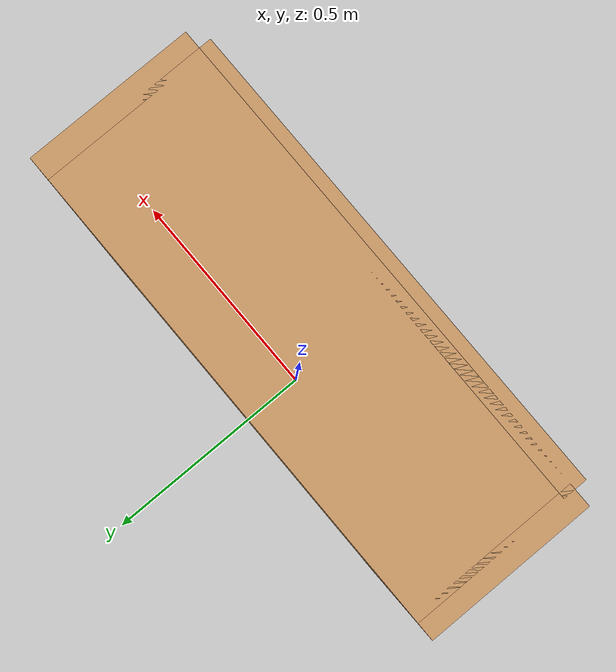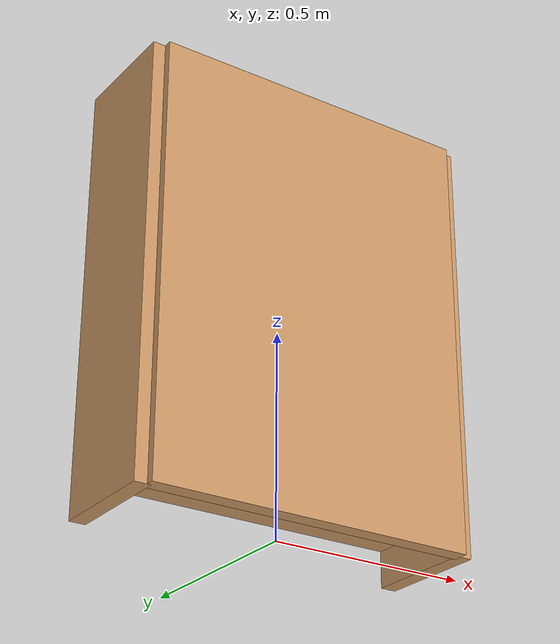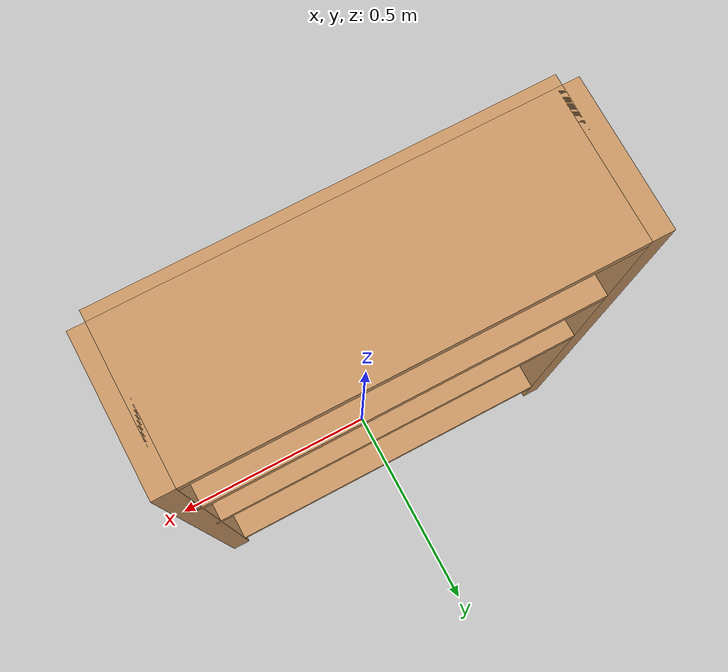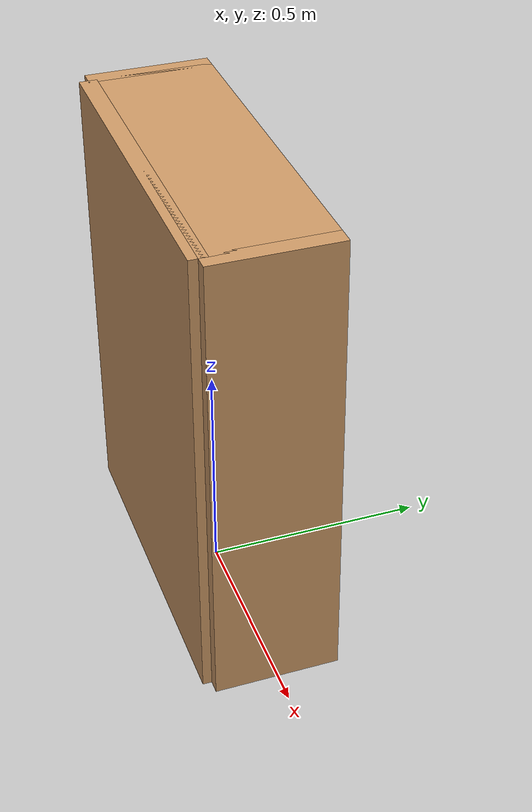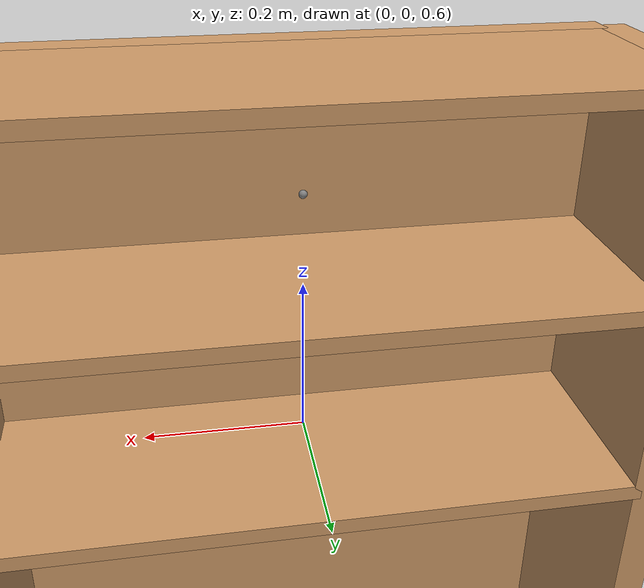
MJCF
<mujoco model="regal_braun">
    <compiler convexhull="true" angle="radian" meshdir="environments/" />
    <statistic extent="0.3" center="0.3 0 0" meansize=".03"/>
      <default class="shelf_brown">
        <geom group="1" contype="1" conaffinity="1" condim="3"/>
      </default>

    <worldbody>
        <body name="shelf" pos="0 0 0">
            <!-- Left Wall -->
            <geom name="left_wall" group="1" contype="1" conaffinity="1" condim="3" type="box" size="0.02 0.14 0.53" pos="-0.41 0 0.53" rgba="0.8 0.6 0.4 1"/>

            <!-- Right Wall -->
            <geom name="right_wall" group="1" contype="1" conaffinity="1" condim="3" type="box" size="0.02 0.14 0.53" pos="0.41 0 0.53" rgba="0.8 0.6 0.4 1"/>

            <!-- Bottom Shelf -->
            <geom name="bottom_shelf" group="1" contype="1" conaffinity="1" condim="3" type="box" size="0.4 0.14 0.01" pos="0 0 0.10" rgba="0.8 0.6 0.4 1"/>

            <!-- Second Shelf -->
            <geom name="second_shelf" group="1" contype="1" conaffinity="1" condim="3" type="box" size="0.4 0.14 0.01" pos="0 0 0.55" rgba="0.8 0.6 0.4 1"/>

            <!-- Third Shelf -->
            <geom name="third_shelf" group="1" contype="1" conaffinity="1" condim="3" type="box" size="0.4 0.14 0.01" pos="0 0 0.80" rgba="0.8 0.6 0.4 1"/>

            <!-- Top Shelf -->
            <geom name="top_shelf" group="1" contype="1" conaffinity="1" condim="3" type="box" size="0.4 0.14 0.01" pos="0 0 1.05" rgba="0.8 0.6 0.4 1"/>

            <!-- Back Wall -->
            <geom name="back_wall" group="1" contype="1" conaffinity="1" condim="3" type="box" size="0.4 0.02 0.53" pos="0 -0.14 0.53" rgba="0.8 0.6 0.4 1"/>
            <site name="gripping_point" type="sphere" pos="0 0 0.915" quat="0.7071068 0.7071068 0 0"/>

        </body>
    </worldbody>
</mujoco>
